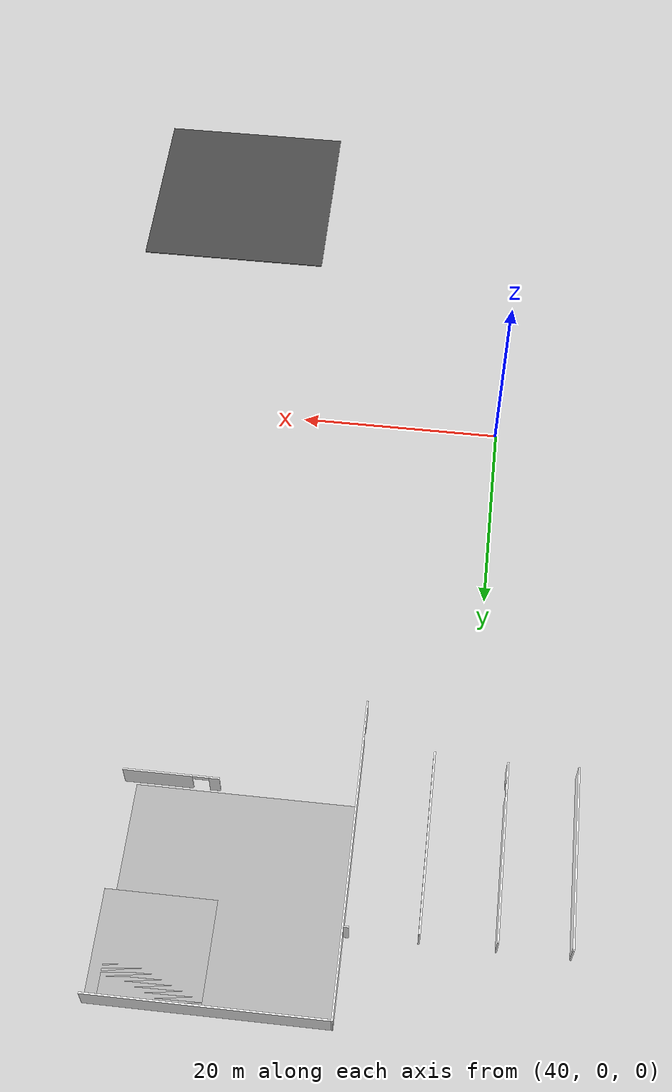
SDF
<sdf version="1.6">
 <world name="default">
  <model name="mainoffice">
   <pose>42.7555 15.4488 0 0 -0 0</pose>
   <link name="Wall_117">
    <pose>7.35091 32.65 0 0 -0 1.5708</pose>
    <visual name="Wall_117_Visual_0">
     <pose>-13.7043 0 1.25 0 -0 0</pose>
     <geometry><box><size>2.09149 0.15 2.5</size></box></geometry>
     <material>
      <script>
       <uri>model://office_env/materials/scripts</uri>
       <uri>model://office_env/materials/textures</uri>
       <name>wall</name>
      </script>
      <ambient>1 1 1 1</ambient>
     </material>
    </visual>
    <collision name="Wall_117_Collision_0">
     <geometry><box><size>2.09149 0.15 2.5</size></box></geometry>
     <pose>-13.7043 0 1.25 0 -0 0</pose>
    </collision>
    <visual name="Wall_117_Visual_1">
     <pose>1.79575 0 1.25 0 -0 0</pose>
     <geometry><box><size>25.9085 0.15 2.5</size></box></geometry>
     <material>
      <script>
       <uri>model://office_env/materials/scripts</uri>
       <uri>model://office_env/materials/textures</uri>
       <name>wall</name>
      </script>
      <ambient>1 1 1 1</ambient>
     </material>
    </visual>
    <collision name="Wall_117_Collision_1">
     <geometry><box><size>25.9085 0.15 2.5</size></box></geometry>
     <pose>1.79575 0 1.25 0 -0 0</pose>
    </collision>
    <visual name="Wall_117_Visual_2">
     <pose>-11.9085 0 2.25 0 -0 0</pose>
     <geometry><box><size>1.5 0.15 0.5</size></box></geometry>
     <material>
      <script>
       <uri>model://office_env/materials/scripts</uri>
       <uri>model://office_env/materials/textures</uri>
       <name>wall</name>
      </script>
      <ambient>1 1 1 1</ambient>
     </material>
    </visual>
    <collision name="Wall_117_Collision_2">
     <geometry><box><size>1.5 0.15 0.5</size></box></geometry>
     <pose>-11.9085 0 2.25 0 -0 0</pose>
    </collision>
   </link>
   <link name="Wall_118">
    <collision name="Wall_118_Collision">
     <geometry><box><size>21.25 0.15 2.5</size></box></geometry>
     <pose>0 0 1.25 0 -0 0</pose>
    </collision>
    <visual name="Wall_118_Visual">
     <pose>0 0 1.25 0 -0 0</pose>
     <geometry><box><size>21.25 0.15 2.5</size></box></geometry>
     <material>
      <script>
       <uri>model://office_env/materials/scripts</uri>
       <uri>model://office_env/materials/textures</uri>
       <name>wall</name>
      </script>
      <ambient>1 1 1 1</ambient>
     </material>
    </visual>
    <pose>17.9009 47.325 0 0 -0 0</pose>
   </link>
   <link name="Wall_120">
    <collision name="Wall_120_Collision">
     <geometry><box><size>0.5 0.15 2.5</size></box></geometry>
     <pose>0 0 1.25 0 -0 0</pose>
    </collision>
    <visual name="Wall_120_Visual">
     <pose>0 0 1.25 0 -0 0</pose>
     <geometry><box><size>0.5 0.15 2.5</size></box></geometry>
     <material>
      <script>
       <uri>model://office_env/materials/scripts</uri>
       <uri>model://office_env/materials/textures</uri>
       <name>wall</name>
      </script>
      <ambient>1 1 1 1</ambient>
     </material>
    </visual>
    <pose>7.07591 39.325 0 0 -0 0</pose>
   </link>
   <link name="Wall_140">
    <collision name="Wall_140_Collision">
     <geometry><box><size>16.75 0.15 2.5</size></box></geometry>
     <pose>0 0 1.25 0 -0 0</pose>
    </collision>
    <visual name="Wall_140_Visual">
     <pose>0 0 1.25 0 -0 0</pose>
     <geometry><box><size>16.75 0.15 2.5</size></box></geometry>
     <material>
      <script>
       <uri>model://office_env/materials/scripts</uri>
       <uri>model://office_env/materials/textures</uri>
       <name>wall</name>
      </script>
      <ambient>1 1 1 1</ambient>
     </material>
    </visual>
    <pose>-12.1935 30.816 0 0 -0 1.5708</pose>
   </link>
   <link name="Wall_141">
    <collision name="Wall_141_Collision">
     <geometry><box><size>0.25 0.15 2.5</size></box></geometry>
     <pose>0 0 1.25 0 -0 0</pose>
    </collision>
    <visual name="Wall_141_Visual">
     <pose>0 0 1.25 0 -0 0</pose>
     <geometry><box><size>0.25 0.15 2.5</size></box></geometry>
     <material>
      <script>
       <uri>model://office_env/materials/scripts</uri>
       <uri>model://office_env/materials/textures</uri>
       <name>wall</name>
      </script>
      <ambient>1 1 1 1</ambient>
     </material>
    </visual>
    <pose>-12.1935 39.166 0 0 -0 1.5708</pose>
   </link>
   <link name="Wall_143">
    <pose>-5.82803 30.9736 0 0 -0 1.5708</pose>
    <visual name="Wall_143_Visual_0">
     <pose>-7.57974 0 1.25 0 -0 0</pose>
     <geometry><box><size>1.59051 0.15 2.5</size></box></geometry>
     <material>
      <script>
       <uri>model://office_env/materials/scripts</uri>
       <uri>model://office_env/materials/textures</uri>
       <name>wall</name>
      </script>
      <ambient>1 1 1 1</ambient>
     </material>
    </visual>
    <collision name="Wall_143_Collision_0">
     <geometry><box><size>1.59051 0.15 2.5</size></box></geometry>
     <pose>-7.57974 0 1.25 0 -0 0</pose>
    </collision>
    <visual name="Wall_143_Visual_1">
     <pose>1.54526 0 1.25 0 -0 0</pose>
     <geometry><box><size>13.6595 0.15 2.5</size></box></geometry>
     <material>
      <script>
       <uri>model://office_env/materials/scripts</uri>
       <uri>model://office_env/materials/textures</uri>
       <name>wall</name>
      </script>
      <ambient>1 1 1 1</ambient>
     </material>
    </visual>
    <collision name="Wall_143_Collision_1">
     <geometry><box><size>13.6595 0.15 2.5</size></box></geometry>
     <pose>1.54526 0 1.25 0 -0 0</pose>
    </collision>
    <visual name="Wall_143_Visual_2">
     <pose>-6.03449 0 2.25 0 -0 0</pose>
     <geometry><box><size>1.5 0.15 0.5</size></box></geometry>
     <material>
      <script>
       <uri>model://office_env/materials/scripts</uri>
       <uri>model://office_env/materials/textures</uri>
       <name>wall</name>
      </script>
      <ambient>1 1 1 1</ambient>
     </material>
    </visual>
    <collision name="Wall_143_Collision_2">
     <geometry><box><size>1.5 0.15 0.5</size></box></geometry>
     <pose>-6.03449 0 2.25 0 -0 0</pose>
    </collision>
   </link>
   <link name="Wall_149">
    <pose>24.1285 27.015 0 0 -0 0</pose>
    <visual name="Wall_149_Visual_0">
     <pose>-3.8969 0 1.25 0 -0 0</pose>
     <geometry><box><size>0.956204 0.15 2.5</size></box></geometry>
     <material>
      <script>
       <uri>model://office_env/materials/scripts</uri>
       <uri>model://office_env/materials/textures</uri>
       <name>wall</name>
      </script>
      <ambient>1 1 1 1</ambient>
     </material>
    </visual>
    <collision name="Wall_149_Collision_0">
     <geometry><box><size>0.956204 0.15 2.5</size></box></geometry>
     <pose>-3.8969 0 1.25 0 -0 0</pose>
    </collision>
    <visual name="Wall_149_Visual_1">
     <pose>1.2281 0 1.25 0 -0 0</pose>
     <geometry><box><size>6.2938 0.15 2.5</size></box></geometry>
     <material>
      <script>
       <uri>model://office_env/materials/scripts</uri>
       <uri>model://office_env/materials/textures</uri>
       <name>wall</name>
      </script>
      <ambient>1 1 1 1</ambient>
     </material>
    </visual>
    <collision name="Wall_149_Collision_1">
     <geometry><box><size>6.2938 0.15 2.5</size></box></geometry>
     <pose>1.2281 0 1.25 0 -0 0</pose>
    </collision>
    <visual name="Wall_149_Visual_2">
     <pose>-2.6688 0 2.25 0 -0 0</pose>
     <geometry><box><size>1.5 0.15 0.5</size></box></geometry>
     <material>
      <script>
       <uri>model://office_env/materials/scripts</uri>
       <uri>model://office_env/materials/textures</uri>
       <name>wall</name>
      </script>
      <ambient>1 1 1 1</ambient>
     </material>
    </visual>
    <collision name="Wall_149_Collision_2">
     <geometry><box><size>1.5 0.15 0.5</size></box></geometry>
     <pose>-2.6688 0 2.25 0 -0 0</pose>
    </collision>
   </link>
   <link name="Wall_151">
    <collision name="Wall_151_Collision">
     <geometry><box><size>17 0.15 2.5</size></box></geometry>
     <pose>0 0 1.25 0 -0 0</pose>
    </collision>
    <visual name="Wall_151_Visual">
     <pose>0 0 1.25 0 -0 0</pose>
     <geometry><box><size>17 0.15 2.5</size></box></geometry>
     <material>
      <script>
       <uri>model://office_env/materials/scripts</uri>
       <uri>model://office_env/materials/textures</uri>
       <name>wall</name>
      </script>
      <ambient>1 1 1 1</ambient>
     </material>
    </visual>
    <pose>0.803107 30.8154 0 0 -0 1.5708</pose>
   </link>
   <static>1</static>
  </model>
  <model name="asphalt_plane">
   <static>1</static>
   <link name="link">
    <collision name="collision"><geometry><box><size>20 20 0.1</size></box></geometry></collision>
    <visual name="visual">
     <cast_shadows>0</cast_shadows>
     <geometry><box><size>20 20 0.1</size></box></geometry>
     <material>
      <script>
       <uri>model://asphalt_plane/materials/scripts</uri>
       <uri>model://asphalt_plane/materials/textures</uri>
       <name>vrc/asphalt</name>
      </script>
     </material>
    </visual>
   </link>
   <pose>70.7475 -31.5972 0 0 -0 0</pose>
  </model>
  <model name="Floor_34">
   <link name="main">
    <pose>0 0 0.01 0 -0 0</pose>
    <collision name="main_Collision"><geometry><box><size>20 20 0.05</size></box></geometry></collision>
    <visual name="main_Visual">
     <geometry><box><size>20 20 0.05</size></box></geometry>
     <material>
      <script>
       <uri>model://Floor_medium/materials/scripts</uri>
       <uri>model://Floor_medium/materials/textures</uri>
       <name>floor</name>
      </script>
     </material>
    </visual>
   </link>
   <static>1</static>
   <pose>60.1672 52.7557 0 0 -0 0</pose>
  </model>
  <model name="Floor_35">
   <link name="main">
    <pose>0 0 0.01 0 -0 0</pose>
    <collision name="main_Collision"><geometry><box><size>10 10 0.05</size></box></geometry></collision>
    <visual name="main_Visual">
     <geometry><box><size>10 10 0.05</size></box></geometry>
     <material>
      <script>
       <uri>model://Floor_small/materials/scripts</uri>
       <uri>model://Floor_small/materials/textures</uri>
       <name>floor</name>
      </script>
     </material>
    </visual>
   </link>
   <static>1</static>
   <pose>66.2217 57.7646 0 0 -0 0</pose>
  </model>
 </world>
</sdf>
